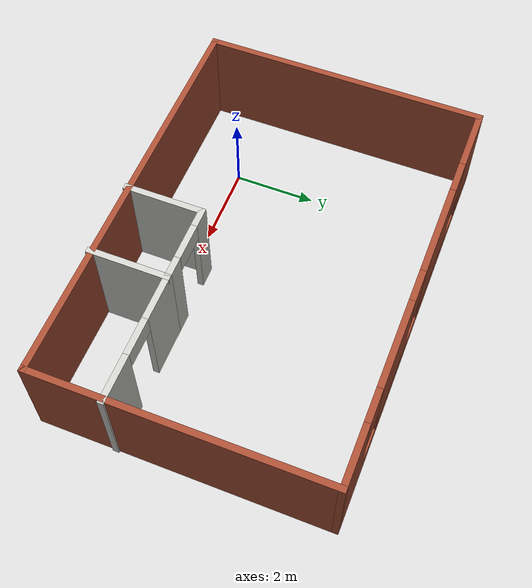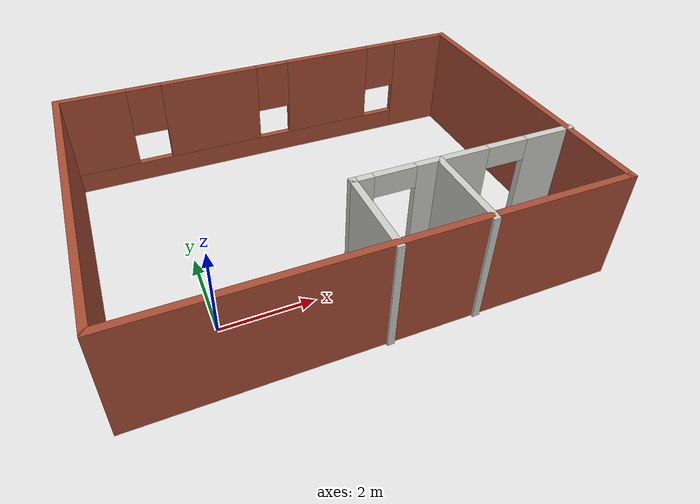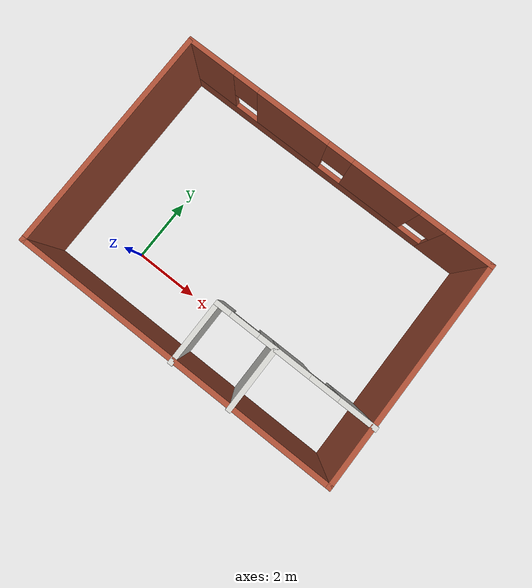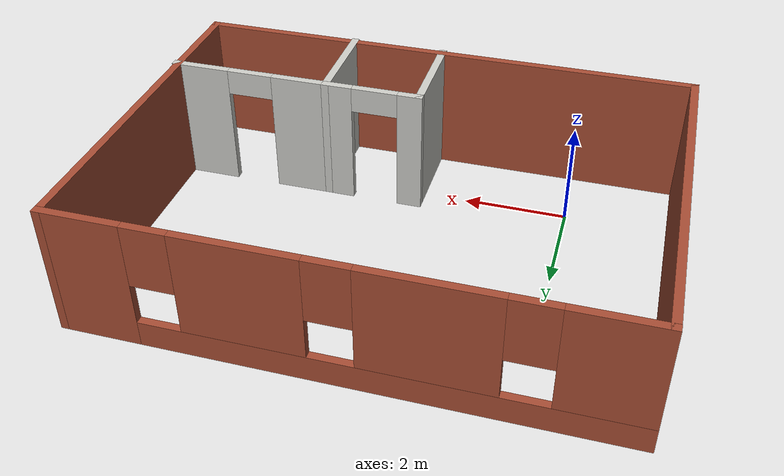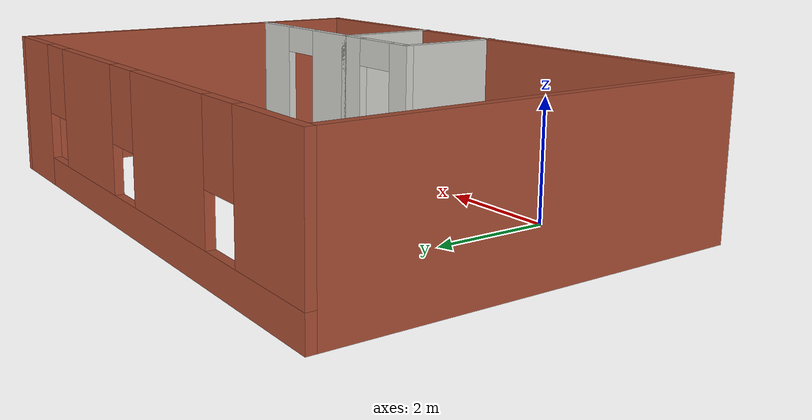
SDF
<?xml version='1.0'?>
<sdf version='1.7'>
  <model name='map1'>
    <pose>2.9151 1.97848 0 0 -0 0</pose>
    <link name='Wall_10'>
      <collision name='Wall_10_Collision'>
        <geometry>
          <box>
            <size>2 0.15 2.5</size>
          </box>
        </geometry>
        <pose>0 0 1.25 0 -0 0</pose>
      </collision>
      <visual name='Wall_10_Visual'>
        <pose>0 0 1.25 0 -0 0</pose>
        <geometry>
          <box>
            <size>2 0.15 2.5</size>
          </box>
        </geometry>
        <material>
          <script>
            <uri>file://media/materials/scripts/gazebo.material</uri>
            <name>Gazebo/CeilingTiled</name>
          </script>
          <ambient>1 1 1 1</ambient>
        </material>
        <meta>
          <layer>0</layer>
        </meta>
      </visual>
      <pose>1.8456 -2.52543 0 0 -0 1.5708</pose>
    </link>
    <link name='Wall_11'>
      <pose>3.3956 -1.60043 0 0 -0 0</pose>
      <visual name='Wall_11_Visual_0'>
        <pose>-1.03891 0 1.25 0 -0 0</pose>
        <geometry>
          <box>
            <size>1.17219 0.15 2.5</size>
          </box>
        </geometry>
        <material>
          <script>
            <uri>file://media/materials/scripts/gazebo.material</uri>
            <name>Gazebo/CeilingTiled</name>
          </script>
          <ambient>1 1 1 1</ambient>
        </material>
        <meta>
          <layer>0</layer>
        </meta>
      </visual>
      <collision name='Wall_11_Collision_0'>
        <geometry>
          <box>
            <size>1.17219 0.15 2.5</size>
          </box>
        </geometry>
        <pose>-1.03891 0 1.25 0 -0 0</pose>
      </collision>
      <visual name='Wall_11_Visual_1'>
        <pose>1.03609 0 1.25 0 -0 0</pose>
        <geometry>
          <box>
            <size>1.17782 0.15 2.5</size>
          </box>
        </geometry>
        <material>
          <script>
            <uri>file://media/materials/scripts/gazebo.material</uri>
            <name>Gazebo/CeilingTiled</name>
          </script>
          <ambient>1 1 1 1</ambient>
        </material>
        <meta>
          <layer>0</layer>
        </meta>
      </visual>
      <collision name='Wall_11_Collision_1'>
        <geometry>
          <box>
            <size>1.17782 0.15 2.5</size>
          </box>
        </geometry>
        <pose>1.03609 0 1.25 0 -0 0</pose>
      </collision>
      <visual name='Wall_11_Visual_2'>
        <pose>-0.002815 0 2.25 0 -0 0</pose>
        <geometry>
          <box>
            <size>0.9 0.15 0.5</size>
          </box>
        </geometry>
        <material>
          <script>
            <uri>file://media/materials/scripts/gazebo.material</uri>
            <name>Gazebo/CeilingTiled</name>
          </script>
          <ambient>1 1 1 1</ambient>
        </material>
        <meta>
          <layer>0</layer>
        </meta>
      </visual>
      <collision name='Wall_11_Collision_2'>
        <geometry>
          <box>
            <size>0.9 0.15 0.5</size>
          </box>
        </geometry>
        <pose>-0.002815 0 2.25 0 -0 0</pose>
      </collision>
    </link>
    <link name='Wall_15'>
      <pose>0.920603 -1.60043 0 0 -0 3.14159</pose>
      <visual name='Wall_15_Visual_0'>
        <pose>-0.697583 0 1.25 0 -0 0</pose>
        <geometry>
          <box>
            <size>0.604834 0.15 2.5</size>
          </box>
        </geometry>
        <material>
          <script>
            <uri>file://media/materials/scripts/gazebo.material</uri>
            <name>Gazebo/CeilingTiled</name>
          </script>
          <ambient>1 1 1 1</ambient>
        </material>
        <meta>
          <layer>0</layer>
        </meta>
      </visual>
      <collision name='Wall_15_Collision_0'>
        <geometry>
          <box>
            <size>0.604834 0.15 2.5</size>
          </box>
        </geometry>
        <pose>-0.697583 0 1.25 0 -0 0</pose>
      </collision>
      <visual name='Wall_15_Visual_1'>
        <pose>0.752417 0 1.25 0 -0 0</pose>
        <geometry>
          <box>
            <size>0.495166 0.15 2.5</size>
          </box>
        </geometry>
        <material>
          <script>
            <uri>file://media/materials/scripts/gazebo.material</uri>
            <name>Gazebo/CeilingTiled</name>
          </script>
          <ambient>1 1 1 1</ambient>
        </material>
        <meta>
          <layer>0</layer>
        </meta>
      </visual>
      <collision name='Wall_15_Collision_1'>
        <geometry>
          <box>
            <size>0.495166 0.15 2.5</size>
          </box>
        </geometry>
        <pose>0.752417 0 1.25 0 -0 0</pose>
      </collision>
      <visual name='Wall_15_Visual_2'>
        <pose>0.054834 0 2.25 0 -0 0</pose>
        <geometry>
          <box>
            <size>0.9 0.15 0.5</size>
          </box>
        </geometry>
        <material>
          <script>
            <uri>file://media/materials/scripts/gazebo.material</uri>
            <name>Gazebo/CeilingTiled</name>
          </script>
          <ambient>1 1 1 1</ambient>
        </material>
        <meta>
          <layer>0</layer>
        </meta>
      </visual>
      <collision name='Wall_15_Collision_2'>
        <geometry>
          <box>
            <size>0.9 0.15 0.5</size>
          </box>
        </geometry>
        <pose>0.054834 0 2.25 0 -0 0</pose>
      </collision>
    </link>
    <link name='Wall_16'>
      <collision name='Wall_16_Collision'>
        <geometry>
          <box>
            <size>2 0.15 2.5</size>
          </box>
        </geometry>
        <pose>0 0 1.25 0 -0 0</pose>
      </collision>
      <visual name='Wall_16_Visual'>
        <pose>0 0 1.25 0 -0 0</pose>
        <geometry>
          <box>
            <size>2 0.15 2.5</size>
          </box>
        </geometry>
        <material>
          <script>
            <uri>file://media/materials/scripts/gazebo.material</uri>
            <name>Gazebo/CeilingTiled</name>
          </script>
          <ambient>1 1 1 1</ambient>
        </material>
        <meta>
          <layer>0</layer>
        </meta>
      </visual>
      <pose>-0.004398 -2.52543 0 0 -0 -1.5708</pose>
    </link>
    <link name='Wall_3'>
      <collision name='Wall_3_Collision'>
        <geometry>
          <box>
            <size>10 0.15 2.5</size>
          </box>
        </geometry>
        <pose>0 0 1.25 0 -0 0</pose>
      </collision>
      <visual name='Wall_3_Visual'>
        <pose>0 0 1.25 0 -0 0</pose>
        <geometry>
          <box>
            <size>10 0.15 2.5</size>
          </box>
        </geometry>
        <material>
          <script>
            <uri>file://media/materials/scripts/gazebo.material</uri>
            <name>Gazebo/Bricks</name>
          </script>
          <ambient>1 1 1 1</ambient>
        </material>
        <meta>
          <layer>0</layer>
        </meta>
      </visual>
      <pose>-0.020602 -3.39957 0 0 -0 0</pose>
    </link>
    <link name='Wall_4'>
      <collision name='Wall_4_Collision'>
        <geometry>
          <box>
            <size>7 0.15 2.5</size>
          </box>
        </geometry>
        <pose>0 0 1.25 0 -0 0</pose>
      </collision>
      <visual name='Wall_4_Visual'>
        <pose>0 0 1.25 0 -0 0</pose>
        <geometry>
          <box>
            <size>7 0.15 2.5</size>
          </box>
        </geometry>
        <material>
          <script>
            <uri>file://media/materials/scripts/gazebo.material</uri>
            <name>Gazebo/Bricks</name>
          </script>
          <ambient>1 1 1 1</ambient>
        </material>
        <meta>
          <layer>0</layer>
        </meta>
      </visual>
      <pose>4.9044 0.025434 0 0 -0 1.5708</pose>
    </link>
    <link name='Wall_6'>
      <pose>-0.020602 3.45043 0 0 -0 3.14159</pose>
      <visual name='Wall_6_Visual_0'>
        <pose>-4.24161 0 1.25 0 -0 0</pose>
        <geometry>
          <box>
            <size>1.51679 0.15 2.5</size>
          </box>
        </geometry>
        <material>
          <script>
            <uri>file://media/materials/scripts/gazebo.material</uri>
            <name>Gazebo/Bricks</name>
          </script>
          <ambient>1 1 1 1</ambient>
        </material>
        <meta>
          <layer>0</layer>
        </meta>
      </visual>
      <collision name='Wall_6_Collision_0'>
        <geometry>
          <box>
            <size>1.51679 0.15 2.5</size>
          </box>
        </geometry>
        <pose>-4.24161 0 1.25 0 -0 0</pose>
      </collision>
      <visual name='Wall_6_Visual_1'>
        <pose>0.758394 0 0.25 0 -0 0</pose>
        <geometry>
          <box>
            <size>8.48321 0.15 0.5</size>
          </box>
        </geometry>
        <material>
          <script>
            <uri>file://media/materials/scripts/gazebo.material</uri>
            <name>Gazebo/Bricks</name>
          </script>
          <ambient>1 1 1 1</ambient>
        </material>
        <meta>
          <layer>0</layer>
        </meta>
      </visual>
      <collision name='Wall_6_Collision_1'>
        <geometry>
          <box>
            <size>8.48321 0.15 0.5</size>
          </box>
        </geometry>
        <pose>0.758394 0 0.25 0 -0 0</pose>
      </collision>
      <visual name='Wall_6_Visual_2'>
        <pose>-1.59481 0 1.5 0 -0 0</pose>
        <geometry>
          <box>
            <size>2.17681 0.15 2</size>
          </box>
        </geometry>
        <material>
          <script>
            <uri>file://media/materials/scripts/gazebo.material</uri>
            <name>Gazebo/Bricks</name>
          </script>
          <ambient>1 1 1 1</ambient>
        </material>
        <meta>
          <layer>0</layer>
        </meta>
      </visual>
      <collision name='Wall_6_Collision_2'>
        <geometry>
          <box>
            <size>2.17681 0.15 2</size>
          </box>
        </geometry>
        <pose>-1.59481 0 1.5 0 -0 0</pose>
      </collision>
      <visual name='Wall_6_Visual_3'>
        <pose>1.4524 0 1.5 0 -0 0</pose>
        <geometry>
          <box>
            <size>2.3176 0.15 2</size>
          </box>
        </geometry>
        <material>
          <script>
            <uri>file://media/materials/scripts/gazebo.material</uri>
            <name>Gazebo/Bricks</name>
          </script>
          <ambient>1 1 1 1</ambient>
        </material>
        <meta>
          <layer>0</layer>
        </meta>
      </visual>
      <collision name='Wall_6_Collision_3'>
        <geometry>
          <box>
            <size>2.3176 0.15 2</size>
          </box>
        </geometry>
        <pose>1.4524 0 1.5 0 -0 0</pose>
      </collision>
      <visual name='Wall_6_Visual_4'>
        <pose>4.2056 0 1.5 0 -0 0</pose>
        <geometry>
          <box>
            <size>1.5888 0.15 2</size>
          </box>
        </geometry>
        <material>
          <script>
            <uri>file://media/materials/scripts/gazebo.material</uri>
            <name>Gazebo/Bricks</name>
          </script>
          <ambient>1 1 1 1</ambient>
        </material>
        <meta>
          <layer>0</layer>
        </meta>
      </visual>
      <collision name='Wall_6_Collision_4'>
        <geometry>
          <box>
            <size>1.5888 0.15 2</size>
          </box>
        </geometry>
        <pose>4.2056 0 1.5 0 -0 0</pose>
      </collision>
      <visual name='Wall_6_Visual_5'>
        <pose>-3.08321 0 1.9 0 -0 0</pose>
        <geometry>
          <box>
            <size>0.8 0.15 1.2</size>
          </box>
        </geometry>
        <material>
          <script>
            <uri>file://media/materials/scripts/gazebo.material</uri>
            <name>Gazebo/Bricks</name>
          </script>
          <ambient>1 1 1 1</ambient>
        </material>
        <meta>
          <layer>0</layer>
        </meta>
      </visual>
      <collision name='Wall_6_Collision_5'>
        <geometry>
          <box>
            <size>0.8 0.15 1.2</size>
          </box>
        </geometry>
        <pose>-3.08321 0 1.9 0 -0 0</pose>
      </collision>
      <visual name='Wall_6_Visual_6'>
        <pose>-0.106404 0 1.9 0 -0 0</pose>
        <geometry>
          <box>
            <size>0.8 0.15 1.2</size>
          </box>
        </geometry>
        <material>
          <script>
            <uri>file://media/materials/scripts/gazebo.material</uri>
            <name>Gazebo/Bricks</name>
          </script>
          <ambient>1 1 1 1</ambient>
        </material>
        <meta>
          <layer>0</layer>
        </meta>
      </visual>
      <collision name='Wall_6_Collision_6'>
        <geometry>
          <box>
            <size>0.8 0.15 1.2</size>
          </box>
        </geometry>
        <pose>-0.106404 0 1.9 0 -0 0</pose>
      </collision>
      <visual name='Wall_6_Visual_7'>
        <pose>3.0112 0 1.9 0 -0 0</pose>
        <geometry>
          <box>
            <size>0.8 0.15 1.2</size>
          </box>
        </geometry>
        <material>
          <script>
            <uri>file://media/materials/scripts/gazebo.material</uri>
            <name>Gazebo/Bricks</name>
          </script>
          <ambient>1 1 1 1</ambient>
        </material>
        <meta>
          <layer>0</layer>
        </meta>
      </visual>
      <collision name='Wall_6_Collision_7'>
        <geometry>
          <box>
            <size>0.8 0.15 1.2</size>
          </box>
        </geometry>
        <pose>3.0112 0 1.9 0 -0 0</pose>
      </collision>
    </link>
    <link name='Wall_7'>
      <collision name='Wall_7_Collision'>
        <geometry>
          <box>
            <size>7 0.15 2.5</size>
          </box>
        </geometry>
        <pose>0 0 1.25 0 -0 0</pose>
      </collision>
      <visual name='Wall_7_Visual'>
        <pose>0 0 1.25 0 -0 0</pose>
        <geometry>
          <box>
            <size>7 0.15 2.5</size>
          </box>
        </geometry>
        <material>
          <script>
            <uri>file://media/materials/scripts/gazebo.material</uri>
            <name>Gazebo/Bricks</name>
          </script>
          <ambient>1 1 1 1</ambient>
        </material>
        <meta>
          <layer>0</layer>
        </meta>
      </visual>
      <pose>-4.9456 0.025434 0 0 -0 -1.5708</pose>
    </link>
    <static>1</static>
  </model>
</sdf>
